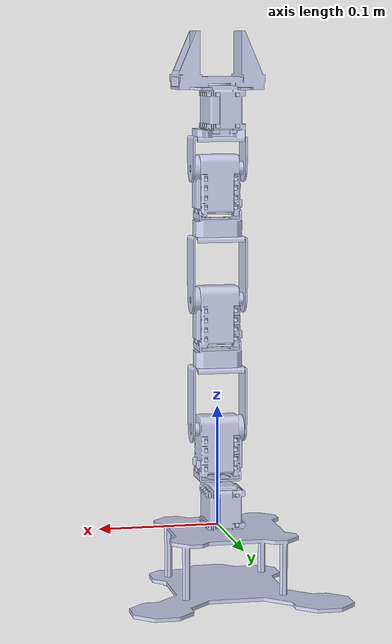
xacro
<?xml version="1.0" encoding="utf-8"?>
<robot
  name="robotpincher" xmlns:xacro="http://www.ros.org/wiki/xacro">
 <!-- Used for fixing robot to Gazebo 'base_link' -->

<!-- BON - Include -->
<xacro:include filename="$(find robotpincher)/urdf/links_joints.xacro"/>
<xacro:include filename="$(find robotpincher)/urdf/robot_parameters.xacro"/>
<xacro:include filename="$(find robotpincher)/urdf/transmissions.xacro"/>
<xacro:include filename="$(find robotpincher)/urdf/robotpincher.gazebo"/>

<!--Links and Joints-->
  <n_link
        name="${l00}"
        inertial_origin_xyz="-3.0003E-12 0.028128 -0.011116"
        inertial_origin_rpy="0 0 0"
        mass_value="0.12147"
        inertia_ixx="0.00017253"
        inertia_ixy="-1.4609E-15"
        inertia_ixz="5.2081E-15"
        inertia_iyy="0.00015924"
        inertia_iyz="8.6917E-06"
        inertia_izz="0.00024303"
        origin_xyz="0 0 0"
        origin_rpy="0 0 0"
        mesh_filename="package://robotpincher/meshes/base_link.STL"/>
  <n_link
        name="${l01}"
        inertial_origin_xyz="-0.00096532 -6.2613E-12 0.067704"
        inertial_origin_rpy="0 0 0"
        mass_value="0.045584"
        inertia_ixx="1.0435E-05"
        inertia_ixy="-5.2081E-15"
        inertia_ixz="-2.5269E-07"
        inertia_iyy="1.2447E-05"
        inertia_iyz="1.4608E-15"
        inertia_izz="7.1283E-06"
        origin_xyz="0 0 0"
        origin_rpy="0 0 0"
        mesh_filename="package://robotpincher/meshes/Link1.STL"/>

  <n_joint
        name="Joint1" type="revolute"
        origin_rpy="0 0 0" origin_xyz="0 0 0"
        parent="${l00}"
        child="${l01}"
        axis_xyz="0 0 1"/>

  <n_link
        name="${l02}"
        inertial_origin_xyz="0.081532 -4.4146E-12 0.00071738"
        inertial_origin_rpy="0 0 0"
        mass_value="0.064652"
        inertia_ixx="1.1916E-05"
        inertia_ixy="1.4609E-15"
        inertia_ixz="3.2612E-07"
        inertia_iyy="1.8721E-05"
        inertia_iyz="5.2081E-15"
        inertia_izz="1.3966E-05"
        origin_xyz="0 0 0"
        origin_rpy="0 0 0"
        mesh_filename="package://robotpincher/meshes/Link2.STL"/>

  <n_joint
        name="Joint2" type="revolute"
        origin_xyz="0 0 0.080912" origin_rpy="3.1416 -1.5708 0"
        parent="${l01}"
        child="${l02}"
        axis_xyz="0 0 -1"/>

  <n_link
        name="${l03}"
        inertial_origin_xyz="0.081532 -4.4141E-12 0.00071738"
        inertial_origin_rpy="0 0 0"
        mass_value="0.064652"
        inertia_ixx="1.1916E-05"
        inertia_ixy="1.4608E-15"
        inertia_ixz="3.2612E-07"
        inertia_iyy="1.8721E-05"
        inertia_iyz="5.2081E-15"
        inertia_izz="1.3966E-05"
        origin_xyz="0 0 0"
        origin_rpy="0 0 0"
        mesh_filename="package://robotpincher/meshes/Link3.STL"/>

  <n_joint
        name="Joint3" type="revolute"
        origin_xyz="0.10798 0 0" origin_rpy="0 0 0"
        parent="${l02}"
        child="${l03}"
        axis_xyz="0 0 -1"/>

  <n_link
        name="${l04}"
        inertial_origin_xyz="0.044275 -0.010475 4.2545E-05"
        inertial_origin_rpy="0 0 0"
        mass_value="0.055887"
        inertia_ixx="1.397E-05"
        inertia_ixy="2.6941E-07"
        inertia_ixz="3.839E-08"
        inertia_iyy="9.7406E-06"
        inertia_iyz="1.461E-15"
        inertia_izz="1.3925E-05"
        origin_xyz="0 0 0"
        origin_rpy="0 0 0"
        mesh_filename="package://robotpincher/meshes/Link4.STL"/>

  <n_joint
        name="Joint4" type="revolute"
        origin_xyz="0.10798 0 0" origin_rpy="0 0 0"
        parent="${l03}"
        child="${l04}"
        axis_xyz="0 0 -1"/>

  <n_link
        name="${l05}"
        inertial_origin_xyz="-0.032112 -0.00040962 1.7381E-15"
        inertial_origin_rpy="0 0 0"
        mass_value="0.021767"
        inertia_ixx="7.4327E-06"
        inertia_ixy="-2.4046E-08"
        inertia_ixz="-3.7014E-20"
        inertia_iyy="5.6772E-06"
        inertia_iyz="-1.388E-21"
        inertia_izz="5.5543E-06"
        origin_xyz="0 0 0"
        origin_rpy="0 0 0"
        mesh_filename="package://robotpincher/meshes/Link5.STL"/>

  <n_joint
        name="Joint5" type="fixed"
        origin_xyz="0.11145 0.00105 0" origin_rpy="0 0 0"
        parent="${l04}"
        child="${l05}"
        axis_xyz="0 0 0"/>

<!--Transmissions-->

<n_transmission
        name="Transmission_1"
        name_joint="Joint1"
        name_actuator="motor1"/>
<n_transmission
        name="Transmission_2"
        name_joint="Joint2"
        name_actuator="motor2"/>
<n_transmission
        name="Transmission_3"
        name_joint="Joint3"
        name_actuator="motor3"/>
<n_transmission
        name="Transmission_4"
        name_joint="Joint4"
        name_actuator="motor4"/>

</robot>

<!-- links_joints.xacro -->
<robot xmlns:xacro="http://www.ros.org/wiki/xacro">

<xacro:macro name="n_joint" params="name type axis_xyz origin_rpy origin_xyz parent child">
 <joint name="${name}" type="${type}">
    <origin xyz="${origin_xyz}" rpy="${origin_rpy}" />
    <parent link="${parent}" />
    <child link="${child}" />
    <axis xyz="${axis_xyz}" />
    <limit lower="-1.5708" upper="1.5708" effort="1000" velocity="0.5" />
  </joint>
</xacro:macro>

<xacro:macro name="n_link" params="name inertial_origin_xyz inertial_origin_rpy origin_xyz origin_rpy  mass_value inertia_ixx inertia_ixy inertia_ixz inertia_iyy inertia_iyz inertia_izz mesh_filename">

<link
    name="${name}">
 <inertial>
      <origin xyz="${inertial_origin_xyz}" rpy="${inertial_origin_rpy}"/>
      <mass value="${mass_value}"/>
      <inertia ixx="${inertia_ixx}" ixy="${inertia_ixy}" ixz="${inertia_ixz}" iyy="${inertia_iyy}" iyz="${inertia_iyz}" izz="${inertia_izz}"/>
    </inertial>
    <visual>
      <origin xyz="${origin_xyz}" rpy="${origin_rpy}"/>
      <geometry>
        <mesh filename="${mesh_filename}" />
      </geometry>
      <material name="">
        <color rgba="0.79216 0.81961 0.93333 1" />
      </material>
    </visual>
    <collision>
      <origin xyz="${origin_xyz}" rpy="${origin_rpy}"/>
      <geometry>
        <mesh filename="${mesh_filename}" />
      </geometry>
    </collision>
  </link>
</xacro:macro>
</robot>

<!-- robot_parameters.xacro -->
<robot xmlns:xacro="http://www.ros.org/wiki/xacro">

<xacro:property name="l00" value="base_link"/>
<xacro:property name="l01" value="Link1"/>
<xacro:property name="l02" value="Link2"/>
<xacro:property name="l03" value="Link3"/>
<xacro:property name="l04" value="Link4"/>
<xacro:property name="l05" value="Link5"/>

</robot>
